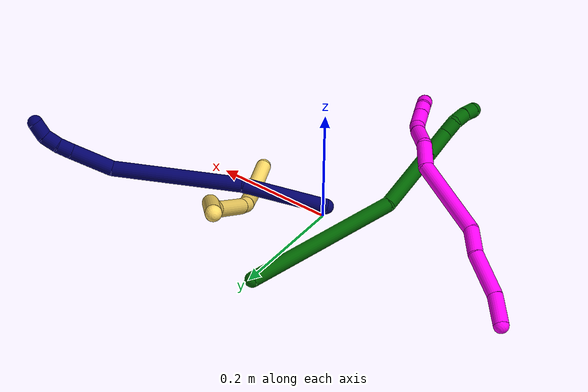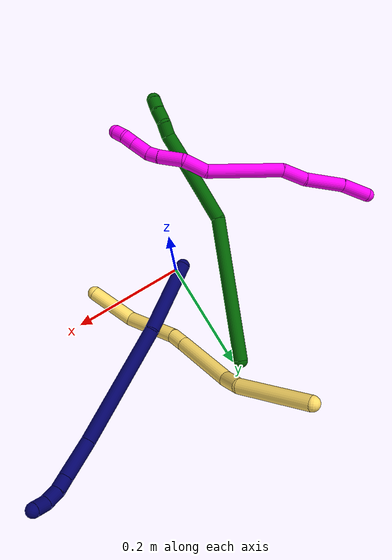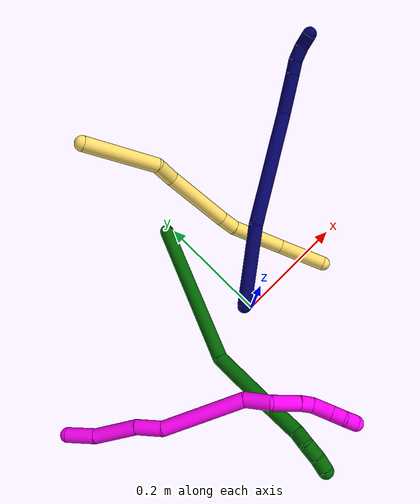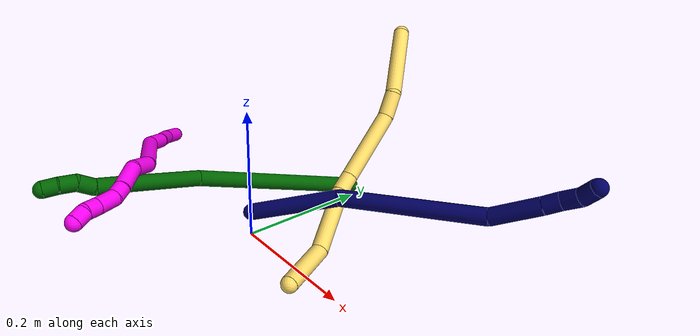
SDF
<sdf version="1.7">
 <world name="default">
  <model name="5">
   <static>0</static>
   <link name="5">
    <collision name="collision-cylinder-e_1_1_4">
     <pose>-0.013481 -0.014291 -0.061001 2.91147 -0.211932 -1.48786</pose>
     <geometry><cylinder><radius>0.0125</radius><length>0.128173</length></cylinder></geometry>
     <surface>
      <friction><ode><mu>1.16</mu><mu2>1.16</mu2><slip1>0</slip1><slip2>0</slip2></ode></friction>
      <contact><ode><kp>1e+06</kp><kd>1</kd><max_vel>0</max_vel><min_depth>0.001</min_depth></ode></contact>
     </surface>
    </collision>
    <visual name="visual-cylinder-e_1_1_4">
     <pose>-0.013481 -0.014291 -0.061001 2.91147 -0.211932 -1.48786</pose>
     <geometry><cylinder><radius>0.0125</radius><length>0.128173</length></cylinder></geometry>
     <material><ambient>1 0.858824 0.4 1</ambient></material>
    </visual>
    <collision name="collision-cylinder-e_2_4_5">
     <pose>-0.03584 -0.039188 -0.136483 2.50943 -0.459359 -1.24132</pose>
     <geometry><cylinder><radius>0.0125</radius><length>0.04005</length></cylinder></geometry>
     <surface>
      <friction><ode><mu>1.16</mu><mu2>1.16</mu2><slip1>0</slip1><slip2>0</slip2></ode></friction>
      <contact><ode><kp>1e+06</kp><kd>1</kd><max_vel>0</max_vel><min_depth>0.001</min_depth></ode></contact>
     </surface>
    </collision>
    <visual name="visual-cylinder-e_2_4_5">
     <pose>-0.03584 -0.039188 -0.136483 2.50943 -0.459359 -1.24132</pose>
     <geometry><cylinder><radius>0.0125</radius><length>0.04005</length></cylinder></geometry>
     <material><ambient>1 0.858824 0.4 1</ambient></material>
    </visual>
    <collision name="collision-cylinder-e_3_5_6">
     <pose>-0.051923 -0.083086 -0.198894 2.53451 -0.12284 -0.387747</pose>
     <geometry><cylinder><radius>0.0125</radius><length>0.117602</length></cylinder></geometry>
     <surface>
      <friction><ode><mu>1.16</mu><mu2>1.16</mu2><slip1>0</slip1><slip2>0</slip2></ode></friction>
      <contact><ode><kp>1e+06</kp><kd>1</kd><max_vel>0</max_vel><min_depth>0.001</min_depth></ode></contact>
     </surface>
    </collision>
    <visual name="visual-cylinder-e_3_5_6">
     <pose>-0.051923 -0.083086 -0.198894 2.53451 -0.12284 -0.387747</pose>
     <geometry><cylinder><radius>0.0125</radius><length>0.117602</length></cylinder></geometry>
     <material><ambient>1 0.858824 0.4 1</ambient></material>
    </visual>
    <collision name="collision-cylinder-e_4_6_7">
     <pose>-0.060173 -0.124267 -0.259145 2.57201 -0.071263 -0.242337</pose>
     <geometry><cylinder><radius>0.0125</radius><length>0.029335</length></cylinder></geometry>
     <surface>
      <friction><ode><mu>1.16</mu><mu2>1.16</mu2><slip1>0</slip1><slip2>0</slip2></ode></friction>
      <contact><ode><kp>1e+06</kp><kd>1</kd><max_vel>0</max_vel><min_depth>0.001</min_depth></ode></contact>
     </surface>
    </collision>
    <visual name="visual-cylinder-e_4_6_7">
     <pose>-0.060173 -0.124267 -0.259145 2.57201 -0.071263 -0.242337</pose>
     <geometry><cylinder><radius>0.0125</radius><length>0.029335</length></cylinder></geometry>
     <material><ambient>1 0.858824 0.4 1</ambient></material>
    </visual>
    <collision name="collision-cylinder-e_5_7_8">
     <pose>-0.067319 -0.149219 -0.318968 2.79676 -0.12032 -0.665984</pose>
     <geometry><cylinder><radius>0.0125</radius><length>0.101681</length></cylinder></geometry>
     <surface>
      <friction><ode><mu>1.16</mu><mu2>1.16</mu2><slip1>0</slip1><slip2>0</slip2></ode></friction>
      <contact><ode><kp>1e+06</kp><kd>1</kd><max_vel>0</max_vel><min_depth>0.001</min_depth></ode></contact>
     </surface>
    </collision>
    <visual name="visual-cylinder-e_5_7_8">
     <pose>-0.067319 -0.149219 -0.318968 2.79676 -0.12032 -0.665984</pose>
     <geometry><cylinder><radius>0.0125</radius><length>0.101681</length></cylinder></geometry>
     <material><ambient>1 0.858824 0.4 1</ambient></material>
    </visual>
    <collision name="collision-cylinder-e_6_8_2">
     <pose>-0.058257 -0.178339 -0.403258 2.82486 0.373342 1.73774</pose>
     <geometry><cylinder><radius>0.0125</radius><length>0.083158</length></cylinder></geometry>
     <surface>
      <friction><ode><mu>1.16</mu><mu2>1.16</mu2><slip1>0</slip1><slip2>0</slip2></ode></friction>
      <contact><ode><kp>1e+06</kp><kd>1</kd><max_vel>0</max_vel><min_depth>0.001</min_depth></ode></contact>
     </surface>
    </collision>
    <visual name="visual-cylinder-e_6_8_2">
     <pose>-0.058257 -0.178339 -0.403258 2.82486 0.373342 1.73774</pose>
     <geometry><cylinder><radius>0.0125</radius><length>0.083158</length></cylinder></geometry>
     <material><ambient>1 0.858824 0.4 1</ambient></material>
    </visual>
    <collision name="collision-sphere-2">
     <pose>-0.043092 -0.190398 -0.440047 0 -0 0</pose>
     <geometry><sphere><radius>0.0125</radius></sphere></geometry>
     <surface>
      <friction><ode><mu>1.16</mu><mu2>1.16</mu2><slip1>0</slip1><slip2>0</slip2></ode></friction>
      <contact><ode><kp>1e+06</kp><kd>1</kd><max_vel>0</max_vel><min_depth>0.001</min_depth></ode></contact>
     </surface>
    </collision>
    <visual name="visual-sphere-2">
     <pose>-0.043092 -0.190398 -0.440047 0 -0 0</pose>
     <geometry><sphere><radius>0.0125</radius></sphere></geometry>
     <material><ambient>1 0.858824 0.4 1</ambient></material>
    </visual>
    <collision name="collision-sphere-4">
     <pose>-0.026961 -0.028582 -0.122002 0 -0 0</pose>
     <geometry><sphere><radius>0.0125</radius></sphere></geometry>
     <surface>
      <friction><ode><mu>1.16</mu><mu2>1.16</mu2><slip1>0</slip1><slip2>0</slip2></ode></friction>
      <contact><ode><kp>1e+06</kp><kd>1</kd><max_vel>0</max_vel><min_depth>0.001</min_depth></ode></contact>
     </surface>
    </collision>
    <visual name="visual-sphere-4">
     <pose>-0.026961 -0.028582 -0.122002 0 -0 0</pose>
     <geometry><sphere><radius>0.0125</radius></sphere></geometry>
     <material><ambient>1 0.858824 0.4 1</ambient></material>
    </visual>
    <collision name="collision-sphere-1">
     <geometry><sphere><radius>0.0125</radius></sphere></geometry>
     <surface>
      <friction><ode><mu>1.16</mu><mu2>1.16</mu2><slip1>0</slip1><slip2>0</slip2></ode></friction>
      <contact><ode><kp>1e+06</kp><kd>1</kd><max_vel>0</max_vel><min_depth>0.001</min_depth></ode></contact>
     </surface>
    </collision>
    <visual name="visual-sphere-1">
     <geometry><sphere><radius>0.0125</radius></sphere></geometry>
     <material><ambient>1 0.858824 0.4 1</ambient></material>
    </visual>
    <collision name="collision-sphere-8">
     <pose>-0.073422 -0.166281 -0.366469 0 -0 0</pose>
     <geometry><sphere><radius>0.0125</radius></sphere></geometry>
     <surface>
      <friction><ode><mu>1.16</mu><mu2>1.16</mu2><slip1>0</slip1><slip2>0</slip2></ode></friction>
      <contact><ode><kp>1e+06</kp><kd>1</kd><max_vel>0</max_vel><min_depth>0.001</min_depth></ode></contact>
     </surface>
    </collision>
    <visual name="visual-sphere-8">
     <pose>-0.073422 -0.166281 -0.366469 0 -0 0</pose>
     <geometry><sphere><radius>0.0125</radius></sphere></geometry>
     <material><ambient>1 0.858824 0.4 1</ambient></material>
    </visual>
    <collision name="collision-sphere-5">
     <pose>-0.044718 -0.049794 -0.150964 0 -0 0</pose>
     <geometry><sphere><radius>0.0125</radius></sphere></geometry>
     <surface>
      <friction><ode><mu>1.16</mu><mu2>1.16</mu2><slip1>0</slip1><slip2>0</slip2></ode></friction>
      <contact><ode><kp>1e+06</kp><kd>1</kd><max_vel>0</max_vel><min_depth>0.001</min_depth></ode></contact>
     </surface>
    </collision>
    <visual name="visual-sphere-5">
     <pose>-0.044718 -0.049794 -0.150964 0 -0 0</pose>
     <geometry><sphere><radius>0.0125</radius></sphere></geometry>
     <material><ambient>1 0.858824 0.4 1</ambient></material>
    </visual>
    <collision name="collision-sphere-6">
     <pose>-0.059128 -0.116377 -0.246825 0 -0 0</pose>
     <geometry><sphere><radius>0.0125</radius></sphere></geometry>
     <surface>
      <friction><ode><mu>1.16</mu><mu2>1.16</mu2><slip1>0</slip1><slip2>0</slip2></ode></friction>
      <contact><ode><kp>1e+06</kp><kd>1</kd><max_vel>0</max_vel><min_depth>0.001</min_depth></ode></contact>
     </surface>
    </collision>
    <visual name="visual-sphere-6">
     <pose>-0.059128 -0.116377 -0.246825 0 -0 0</pose>
     <geometry><sphere><radius>0.0125</radius></sphere></geometry>
     <material><ambient>1 0.858824 0.4 1</ambient></material>
    </visual>
    <collision name="collision-sphere-7">
     <pose>-0.061217 -0.132157 -0.271466 0 -0 0</pose>
     <geometry><sphere><radius>0.0125</radius></sphere></geometry>
     <surface>
      <friction><ode><mu>1.16</mu><mu2>1.16</mu2><slip1>0</slip1><slip2>0</slip2></ode></friction>
      <contact><ode><kp>1e+06</kp><kd>1</kd><max_vel>0</max_vel><min_depth>0.001</min_depth></ode></contact>
     </surface>
    </collision>
    <visual name="visual-sphere-7">
     <pose>-0.061217 -0.132157 -0.271466 0 -0 0</pose>
     <geometry><sphere><radius>0.0125</radius></sphere></geometry>
     <material><ambient>1 0.858824 0.4 1</ambient></material>
    </visual>
    <inertial>
     <pose>-0.045449 -0.093641 -0.220489 0 -0 0</pose>
     <mass>0.5</mass>
     <inertia>
      <ixx>-3.6e-05</ixx>
      <ixy>0</ixy>
      <ixz>0</ixz>
      <iyy>-0.000422</iyy>
      <iyz>0</iyz>
      <izz>0.000187</izz>
     </inertia>
    </inertial>
   </link>
   <pose>-0.043536 0.338267 0.24658 1.01638 -1.04404 -1.80682</pose>
  </model>
  <model name="6">
   <static>0</static>
   <link name="6">
    <collision name="collision-cylinder-e_1_1_4">
     <pose>-0.085877 -0.083961 -0.045426 2.06673 -0.732592 -1.14387</pose>
     <geometry><cylinder><radius>0.0125</radius><length>0.256811</length></cylinder></geometry>
     <surface>
      <friction><ode><mu>1.16</mu><mu2>1.16</mu2><slip1>0</slip1><slip2>0</slip2></ode></friction>
      <contact><ode><kp>1e+06</kp><kd>1</kd><max_vel>0</max_vel><min_depth>0.001</min_depth></ode></contact>
     </surface>
    </collision>
    <visual name="visual-cylinder-e_1_1_4">
     <pose>-0.085877 -0.083961 -0.045426 2.06673 -0.732592 -1.14387</pose>
     <geometry><cylinder><radius>0.0125</radius><length>0.256811</length></cylinder></geometry>
     <material><ambient>0 0.392157 0.003922 1</ambient></material>
    </visual>
    <collision name="collision-cylinder-e_2_4_5">
     <pose>-0.191704 -0.218196 -0.115795 2.03135 -0.341544 -0.542438</pose>
     <geometry><cylinder><radius>0.0125</radius><length>0.119123</length></cylinder></geometry>
     <surface>
      <friction><ode><mu>1.16</mu><mu2>1.16</mu2><slip1>0</slip1><slip2>0</slip2></ode></friction>
      <contact><ode><kp>1e+06</kp><kd>1</kd><max_vel>0</max_vel><min_depth>0.001</min_depth></ode></contact>
     </surface>
    </collision>
    <visual name="visual-cylinder-e_2_4_5">
     <pose>-0.191704 -0.218196 -0.115795 2.03135 -0.341544 -0.542438</pose>
     <geometry><cylinder><radius>0.0125</radius><length>0.119123</length></cylinder></geometry>
     <material><ambient>0 0.392157 0.003922 1</ambient></material>
    </visual>
    <collision name="collision-cylinder-e_3_5_6">
     <pose>-0.219946 -0.29052 -0.151844 2.0374 -0.324018 -0.518707</pose>
     <geometry><cylinder><radius>0.0125</radius><length>0.052089</length></cylinder></geometry>
     <surface>
      <friction><ode><mu>1.16</mu><mu2>1.16</mu2><slip1>0</slip1><slip2>0</slip2></ode></friction>
      <contact><ode><kp>1e+06</kp><kd>1</kd><max_vel>0</max_vel><min_depth>0.001</min_depth></ode></contact>
     </surface>
    </collision>
    <visual name="visual-cylinder-e_3_5_6">
     <pose>-0.219946 -0.29052 -0.151844 2.0374 -0.324018 -0.518707</pose>
     <geometry><cylinder><radius>0.0125</radius><length>0.052089</length></cylinder></geometry>
     <material><ambient>0 0.392157 0.003922 1</ambient></material>
    </visual>
    <collision name="collision-cylinder-e_4_6_7">
     <pose>-0.234163 -0.323843 -0.164572 1.71362 -0.479704 -0.55018</pose>
     <geometry><cylinder><radius>0.0125</radius><length>0.025678</length></cylinder></geometry>
     <surface>
      <friction><ode><mu>1.16</mu><mu2>1.16</mu2><slip1>0</slip1><slip2>0</slip2></ode></friction>
      <contact><ode><kp>1e+06</kp><kd>1</kd><max_vel>0</max_vel><min_depth>0.001</min_depth></ode></contact>
     </surface>
    </collision>
    <visual name="visual-cylinder-e_4_6_7">
     <pose>-0.234163 -0.323843 -0.164572 1.71362 -0.479704 -0.55018</pose>
     <geometry><cylinder><radius>0.0125</radius><length>0.025678</length></cylinder></geometry>
     <material><ambient>0 0.392157 0.003922 1</ambient></material>
    </visual>
    <collision name="collision-cylinder-e_5_7_8">
     <pose>-0.245472 -0.344171 -0.172712 2.19479 -0.449605 -0.839709</pose>
     <geometry><cylinder><radius>0.0125</radius><length>0.024774</length></cylinder></geometry>
     <surface>
      <friction><ode><mu>1.16</mu><mu2>1.16</mu2><slip1>0</slip1><slip2>0</slip2></ode></friction>
      <contact><ode><kp>1e+06</kp><kd>1</kd><max_vel>0</max_vel><min_depth>0.001</min_depth></ode></contact>
     </surface>
    </collision>
    <visual name="visual-cylinder-e_5_7_8">
     <pose>-0.245472 -0.344171 -0.172712 2.19479 -0.449605 -0.839709</pose>
     <geometry><cylinder><radius>0.0125</radius><length>0.024774</length></cylinder></geometry>
     <material><ambient>0 0.392157 0.003922 1</ambient></material>
    </visual>
    <collision name="collision-cylinder-e_6_8_2">
     <pose>-0.256459 -0.359667 -0.185782 2.36468 -0.547554 -1.20281</pose>
     <geometry><cylinder><radius>0.0125</radius><length>0.021525</length></cylinder></geometry>
     <surface>
      <friction><ode><mu>1.16</mu><mu2>1.16</mu2><slip1>0</slip1><slip2>0</slip2></ode></friction>
      <contact><ode><kp>1e+06</kp><kd>1</kd><max_vel>0</max_vel><min_depth>0.001</min_depth></ode></contact>
     </surface>
    </collision>
    <visual name="visual-cylinder-e_6_8_2">
     <pose>-0.256459 -0.359667 -0.185782 2.36468 -0.547554 -1.20281</pose>
     <geometry><cylinder><radius>0.0125</radius><length>0.021525</length></cylinder></geometry>
     <material><ambient>0 0.392157 0.003922 1</ambient></material>
    </visual>
    <collision name="collision-sphere-2">
     <pose>-0.262062 -0.36611 -0.192335 0 -0 0</pose>
     <geometry><sphere><radius>0.0125</radius></sphere></geometry>
     <surface>
      <friction><ode><mu>1.16</mu><mu2>1.16</mu2><slip1>0</slip1><slip2>0</slip2></ode></friction>
      <contact><ode><kp>1e+06</kp><kd>1</kd><max_vel>0</max_vel><min_depth>0.001</min_depth></ode></contact>
     </surface>
    </collision>
    <visual name="visual-sphere-2">
     <pose>-0.262062 -0.36611 -0.192335 0 -0 0</pose>
     <geometry><sphere><radius>0.0125</radius></sphere></geometry>
     <material><ambient>0 0.392157 0.003922 1</ambient></material>
    </visual>
    <collision name="collision-sphere-4">
     <pose>-0.171755 -0.167923 -0.090852 0 -0 0</pose>
     <geometry><sphere><radius>0.0125</radius></sphere></geometry>
     <surface>
      <friction><ode><mu>1.16</mu><mu2>1.16</mu2><slip1>0</slip1><slip2>0</slip2></ode></friction>
      <contact><ode><kp>1e+06</kp><kd>1</kd><max_vel>0</max_vel><min_depth>0.001</min_depth></ode></contact>
     </surface>
    </collision>
    <visual name="visual-sphere-4">
     <pose>-0.171755 -0.167923 -0.090852 0 -0 0</pose>
     <geometry><sphere><radius>0.0125</radius></sphere></geometry>
     <material><ambient>0 0.392157 0.003922 1</ambient></material>
    </visual>
    <collision name="collision-sphere-1">
     <geometry><sphere><radius>0.0125</radius></sphere></geometry>
     <surface>
      <friction><ode><mu>1.16</mu><mu2>1.16</mu2><slip1>0</slip1><slip2>0</slip2></ode></friction>
      <contact><ode><kp>1e+06</kp><kd>1</kd><max_vel>0</max_vel><min_depth>0.001</min_depth></ode></contact>
     </surface>
    </collision>
    <visual name="visual-sphere-1">
     <geometry><sphere><radius>0.0125</radius></sphere></geometry>
     <material><ambient>0 0.392157 0.003922 1</ambient></material>
    </visual>
    <collision name="collision-sphere-8">
     <pose>-0.250856 -0.353225 -0.17923 0 -0 0</pose>
     <geometry><sphere><radius>0.0125</radius></sphere></geometry>
     <surface>
      <friction><ode><mu>1.16</mu><mu2>1.16</mu2><slip1>0</slip1><slip2>0</slip2></ode></friction>
      <contact><ode><kp>1e+06</kp><kd>1</kd><max_vel>0</max_vel><min_depth>0.001</min_depth></ode></contact>
     </surface>
    </collision>
    <visual name="visual-sphere-8">
     <pose>-0.250856 -0.353225 -0.17923 0 -0 0</pose>
     <geometry><sphere><radius>0.0125</radius></sphere></geometry>
     <material><ambient>0 0.392157 0.003922 1</ambient></material>
    </visual>
    <collision name="collision-sphere-5">
     <pose>-0.211654 -0.26847 -0.140738 0 -0 0</pose>
     <geometry><sphere><radius>0.0125</radius></sphere></geometry>
     <surface>
      <friction><ode><mu>1.16</mu><mu2>1.16</mu2><slip1>0</slip1><slip2>0</slip2></ode></friction>
      <contact><ode><kp>1e+06</kp><kd>1</kd><max_vel>0</max_vel><min_depth>0.001</min_depth></ode></contact>
     </surface>
    </collision>
    <visual name="visual-sphere-5">
     <pose>-0.211654 -0.26847 -0.140738 0 -0 0</pose>
     <geometry><sphere><radius>0.0125</radius></sphere></geometry>
     <material><ambient>0 0.392157 0.003922 1</ambient></material>
    </visual>
    <collision name="collision-sphere-6">
     <pose>-0.228238 -0.31257 -0.162951 0 -0 0</pose>
     <geometry><sphere><radius>0.0125</radius></sphere></geometry>
     <surface>
      <friction><ode><mu>1.16</mu><mu2>1.16</mu2><slip1>0</slip1><slip2>0</slip2></ode></friction>
      <contact><ode><kp>1e+06</kp><kd>1</kd><max_vel>0</max_vel><min_depth>0.001</min_depth></ode></contact>
     </surface>
    </collision>
    <visual name="visual-sphere-6">
     <pose>-0.228238 -0.31257 -0.162951 0 -0 0</pose>
     <geometry><sphere><radius>0.0125</radius></sphere></geometry>
     <material><ambient>0 0.392157 0.003922 1</ambient></material>
    </visual>
    <collision name="collision-sphere-7">
     <pose>-0.240089 -0.335117 -0.166193 0 -0 0</pose>
     <geometry><sphere><radius>0.0125</radius></sphere></geometry>
     <surface>
      <friction><ode><mu>1.16</mu><mu2>1.16</mu2><slip1>0</slip1><slip2>0</slip2></ode></friction>
      <contact><ode><kp>1e+06</kp><kd>1</kd><max_vel>0</max_vel><min_depth>0.001</min_depth></ode></contact>
     </surface>
    </collision>
    <visual name="visual-sphere-7">
     <pose>-0.240089 -0.335117 -0.166193 0 -0 0</pose>
     <geometry><sphere><radius>0.0125</radius></sphere></geometry>
     <material><ambient>0 0.392157 0.003922 1</ambient></material>
    </visual>
    <inertial>
     <pose>-0.147924 -0.174543 -0.091746 0 -0 0</pose>
     <mass>0.5</mass>
     <inertia>
      <ixx>-0.000494</ixx>
      <ixy>0</ixy>
      <ixz>0</ixz>
      <iyy>-0.000627</iyy>
      <iyz>0</iyz>
      <izz>0.00206</izz>
     </inertia>
    </inertial>
   </link>
   <pose>-0.011894 0.206578 0.012174 -0.690312 0.05783 0.345328</pose>
  </model>
  <model name="7">
   <static>0</static>
   <link name="7">
    <collision name="collision-cylinder-e_1_1_4">
     <pose>0.018654 0.013411 0.067736 -0.195466 0.26385 -0.026019</pose>
     <geometry><cylinder><radius>0.0125</radius><length>0.143052</length></cylinder></geometry>
     <surface>
      <friction><ode><mu>1.16</mu><mu2>1.16</mu2><slip1>0</slip1><slip2>0</slip2></ode></friction>
      <contact><ode><kp>1e+06</kp><kd>1</kd><max_vel>0</max_vel><min_depth>0.001</min_depth></ode></contact>
     </surface>
    </collision>
    <visual name="visual-cylinder-e_1_1_4">
     <pose>0.018654 0.013411 0.067736 -0.195466 0.26385 -0.026019</pose>
     <geometry><cylinder><radius>0.0125</radius><length>0.143052</length></cylinder></geometry>
     <material><ambient>0.003922 0 0.403922 1</ambient></material>
    </visual>
    <collision name="collision-cylinder-e_2_4_5">
     <pose>0.080957 0.066114 0.222824 -0.42269 0.427596 -0.093097</pose>
     <geometry><cylinder><radius>0.0125</radius><length>0.210519</length></cylinder></geometry>
     <surface>
      <friction><ode><mu>1.16</mu><mu2>1.16</mu2><slip1>0</slip1><slip2>0</slip2></ode></friction>
      <contact><ode><kp>1e+06</kp><kd>1</kd><max_vel>0</max_vel><min_depth>0.001</min_depth></ode></contact>
     </surface>
    </collision>
    <visual name="visual-cylinder-e_2_4_5">
     <pose>0.080957 0.066114 0.222824 -0.42269 0.427596 -0.093097</pose>
     <geometry><cylinder><radius>0.0125</radius><length>0.210519</length></cylinder></geometry>
     <material><ambient>0.003922 0 0.403922 1</ambient></material>
    </visual>
    <collision name="collision-cylinder-e_3_5_6">
     <pose>0.135388 0.10716 0.344077 -0.05171 0.307528 -0.008016</pose>
     <geometry><cylinder><radius>0.0125</radius><length>0.071234</length></cylinder></geometry>
     <surface>
      <friction><ode><mu>1.16</mu><mu2>1.16</mu2><slip1>0</slip1><slip2>0</slip2></ode></friction>
      <contact><ode><kp>1e+06</kp><kd>1</kd><max_vel>0</max_vel><min_depth>0.001</min_depth></ode></contact>
     </surface>
    </collision>
    <visual name="visual-cylinder-e_3_5_6">
     <pose>0.135388 0.10716 0.344077 -0.05171 0.307528 -0.008016</pose>
     <geometry><cylinder><radius>0.0125</radius><length>0.071234</length></cylinder></geometry>
     <material><ambient>0.003922 0 0.403922 1</ambient></material>
    </visual>
    <collision name="collision-cylinder-e_4_6_7">
     <pose>0.14939 0.109039 0.389413 -0.010855 0.274528 -0.001499</pose>
     <geometry><cylinder><radius>0.0125</radius><length>0.02376</length></cylinder></geometry>
     <surface>
      <friction><ode><mu>1.16</mu><mu2>1.16</mu2><slip1>0</slip1><slip2>0</slip2></ode></friction>
      <contact><ode><kp>1e+06</kp><kd>1</kd><max_vel>0</max_vel><min_depth>0.001</min_depth></ode></contact>
     </surface>
    </collision>
    <visual name="visual-cylinder-e_4_6_7">
     <pose>0.14939 0.109039 0.389413 -0.010855 0.274528 -0.001499</pose>
     <geometry><cylinder><radius>0.0125</radius><length>0.02376</length></cylinder></geometry>
     <material><ambient>0.003922 0 0.403922 1</ambient></material>
    </visual>
    <collision name="collision-cylinder-e_5_7_8">
     <pose>0.158319 0.107915 0.412171 0.109702 0.464484 0.02597</pose>
     <geometry><cylinder><radius>0.0125</radius><length>0.025484</length></cylinder></geometry>
     <surface>
      <friction><ode><mu>1.16</mu><mu2>1.16</mu2><slip1>0</slip1><slip2>0</slip2></ode></friction>
      <contact><ode><kp>1e+06</kp><kd>1</kd><max_vel>0</max_vel><min_depth>0.001</min_depth></ode></contact>
     </surface>
    </collision>
    <visual name="visual-cylinder-e_5_7_8">
     <pose>0.158319 0.107915 0.412171 0.109702 0.464484 0.02597</pose>
     <geometry><cylinder><radius>0.0125</radius><length>0.025484</length></cylinder></geometry>
     <material><ambient>0.003922 0 0.403922 1</ambient></material>
    </visual>
    <collision name="collision-cylinder-e_6_8_2">
     <pose>0.169253 0.100428 0.4336 0.553191 0.414546 0.119251</pose>
     <geometry><cylinder><radius>0.0125</radius><length>0.02595</length></cylinder></geometry>
     <surface>
      <friction><ode><mu>1.16</mu><mu2>1.16</mu2><slip1>0</slip1><slip2>0</slip2></ode></friction>
      <contact><ode><kp>1e+06</kp><kd>1</kd><max_vel>0</max_vel><min_depth>0.001</min_depth></ode></contact>
     </surface>
    </collision>
    <visual name="visual-cylinder-e_6_8_2">
     <pose>0.169253 0.100428 0.4336 0.553191 0.414546 0.119251</pose>
     <geometry><cylinder><radius>0.0125</radius><length>0.02595</length></cylinder></geometry>
     <material><ambient>0.003922 0 0.403922 1</ambient></material>
    </visual>
    <collision name="collision-sphere-2">
     <pose>0.174479 0.094189 0.443704 0 -0 0</pose>
     <geometry><sphere><radius>0.0125</radius></sphere></geometry>
     <surface>
      <friction><ode><mu>1.16</mu><mu2>1.16</mu2><slip1>0</slip1><slip2>0</slip2></ode></friction>
      <contact><ode><kp>1e+06</kp><kd>1</kd><max_vel>0</max_vel><min_depth>0.001</min_depth></ode></contact>
     </surface>
    </collision>
    <visual name="visual-sphere-2">
     <pose>0.174479 0.094189 0.443704 0 -0 0</pose>
     <geometry><sphere><radius>0.0125</radius></sphere></geometry>
     <material><ambient>0.003922 0 0.403922 1</ambient></material>
    </visual>
    <collision name="collision-sphere-4">
     <pose>0.037308 0.026823 0.135472 0 -0 0</pose>
     <geometry><sphere><radius>0.0125</radius></sphere></geometry>
     <surface>
      <friction><ode><mu>1.16</mu><mu2>1.16</mu2><slip1>0</slip1><slip2>0</slip2></ode></friction>
      <contact><ode><kp>1e+06</kp><kd>1</kd><max_vel>0</max_vel><min_depth>0.001</min_depth></ode></contact>
     </surface>
    </collision>
    <visual name="visual-sphere-4">
     <pose>0.037308 0.026823 0.135472 0 -0 0</pose>
     <geometry><sphere><radius>0.0125</radius></sphere></geometry>
     <material><ambient>0.003922 0 0.403922 1</ambient></material>
    </visual>
    <collision name="collision-sphere-1">
     <geometry><sphere><radius>0.0125</radius></sphere></geometry>
     <surface>
      <friction><ode><mu>1.16</mu><mu2>1.16</mu2><slip1>0</slip1><slip2>0</slip2></ode></friction>
      <contact><ode><kp>1e+06</kp><kd>1</kd><max_vel>0</max_vel><min_depth>0.001</min_depth></ode></contact>
     </surface>
    </collision>
    <visual name="visual-sphere-1">
     <geometry><sphere><radius>0.0125</radius></sphere></geometry>
     <material><ambient>0.003922 0 0.403922 1</ambient></material>
    </visual>
    <collision name="collision-sphere-8">
     <pose>0.164027 0.106668 0.423495 0 -0 0</pose>
     <geometry><sphere><radius>0.0125</radius></sphere></geometry>
     <surface>
      <friction><ode><mu>1.16</mu><mu2>1.16</mu2><slip1>0</slip1><slip2>0</slip2></ode></friction>
      <contact><ode><kp>1e+06</kp><kd>1</kd><max_vel>0</max_vel><min_depth>0.001</min_depth></ode></contact>
     </surface>
    </collision>
    <visual name="visual-sphere-8">
     <pose>0.164027 0.106668 0.423495 0 -0 0</pose>
     <geometry><sphere><radius>0.0125</radius></sphere></geometry>
     <material><ambient>0.003922 0 0.403922 1</ambient></material>
    </visual>
    <collision name="collision-sphere-5">
     <pose>0.124607 0.105405 0.310177 0 -0 0</pose>
     <geometry><sphere><radius>0.0125</radius></sphere></geometry>
     <surface>
      <friction><ode><mu>1.16</mu><mu2>1.16</mu2><slip1>0</slip1><slip2>0</slip2></ode></friction>
      <contact><ode><kp>1e+06</kp><kd>1</kd><max_vel>0</max_vel><min_depth>0.001</min_depth></ode></contact>
     </surface>
    </collision>
    <visual name="visual-sphere-5">
     <pose>0.124607 0.105405 0.310177 0 -0 0</pose>
     <geometry><sphere><radius>0.0125</radius></sphere></geometry>
     <material><ambient>0.003922 0 0.403922 1</ambient></material>
    </visual>
    <collision name="collision-sphere-6">
     <pose>0.14617 0.108914 0.377978 0 -0 0</pose>
     <geometry><sphere><radius>0.0125</radius></sphere></geometry>
     <surface>
      <friction><ode><mu>1.16</mu><mu2>1.16</mu2><slip1>0</slip1><slip2>0</slip2></ode></friction>
      <contact><ode><kp>1e+06</kp><kd>1</kd><max_vel>0</max_vel><min_depth>0.001</min_depth></ode></contact>
     </surface>
    </collision>
    <visual name="visual-sphere-6">
     <pose>0.14617 0.108914 0.377978 0 -0 0</pose>
     <geometry><sphere><radius>0.0125</radius></sphere></geometry>
     <material><ambient>0.003922 0 0.403922 1</ambient></material>
    </visual>
    <collision name="collision-sphere-7">
     <pose>0.152611 0.109163 0.400847 0 -0 0</pose>
     <geometry><sphere><radius>0.0125</radius></sphere></geometry>
     <surface>
      <friction><ode><mu>1.16</mu><mu2>1.16</mu2><slip1>0</slip1><slip2>0</slip2></ode></friction>
      <contact><ode><kp>1e+06</kp><kd>1</kd><max_vel>0</max_vel><min_depth>0.001</min_depth></ode></contact>
     </surface>
    </collision>
    <visual name="visual-sphere-7">
     <pose>0.152611 0.109163 0.400847 0 -0 0</pose>
     <geometry><sphere><radius>0.0125</radius></sphere></geometry>
     <material><ambient>0.003922 0 0.403922 1</ambient></material>
    </visual>
    <inertial>
     <pose>0.082664 0.062835 0.224234 0 -0 0</pose>
     <mass>0.5</mass>
     <inertia>
      <ixx>0.000931</ixx>
      <ixy>0</ixy>
      <ixz>0</ixz>
      <iyy>0.000945</iyy>
      <iyz>0</iyz>
      <izz>-0.000709</izz>
     </inertia>
    </inertial>
   </link>
   <pose>-0.011504 0.008297 0.030455 -0.992441 0.147798 -0.585532</pose>
  </model>
  <model name="10">
   <static>0</static>
   <link name="10">
    <collision name="collision-cylinder-e_1_1_4">
     <pose>0.011325 -0.012874 0.020068 0.570383 0.443428 0.131987</pose>
     <geometry><cylinder><radius>0.0125</radius><length>0.05279</length></cylinder></geometry>
     <surface>
      <friction><ode><mu>1.16</mu><mu2>1.16</mu2><slip1>0</slip1><slip2>0</slip2></ode></friction>
      <contact><ode><kp>1e+06</kp><kd>1</kd><max_vel>0</max_vel><min_depth>0.001</min_depth></ode></contact>
     </surface>
    </collision>
    <visual name="visual-cylinder-e_1_1_4">
     <pose>0.011325 -0.012874 0.020068 0.570383 0.443428 0.131987</pose>
     <geometry><cylinder><radius>0.0125</radius><length>0.05279</length></cylinder></geometry>
     <material><ambient>1 0 0.964706 1</ambient></material>
    </visual>
    <collision name="collision-cylinder-e_2_4_5">
     <pose>0.043642 -0.048291 0.062684 0.785295 0.582264 0.246936</pose>
     <geometry><cylinder><radius>0.0125</radius><length>0.076351</length></cylinder></geometry>
     <surface>
      <friction><ode><mu>1.16</mu><mu2>1.16</mu2><slip1>0</slip1><slip2>0</slip2></ode></friction>
      <contact><ode><kp>1e+06</kp><kd>1</kd><max_vel>0</max_vel><min_depth>0.001</min_depth></ode></contact>
     </surface>
    </collision>
    <visual name="visual-cylinder-e_2_4_5">
     <pose>0.043642 -0.048291 0.062684 0.785295 0.582264 0.246936</pose>
     <geometry><cylinder><radius>0.0125</radius><length>0.076351</length></cylinder></geometry>
     <material><ambient>1 0 0.964706 1</ambient></material>
    </visual>
    <collision name="collision-cylinder-e_3_5_6">
     <pose>0.073755 -0.082035 0.102993 0.562644 0.409744 0.119951</pose>
     <geometry><cylinder><radius>0.0125</radius><length>0.045783</length></cylinder></geometry>
     <surface>
      <friction><ode><mu>1.16</mu><mu2>1.16</mu2><slip1>0</slip1><slip2>0</slip2></ode></friction>
      <contact><ode><kp>1e+06</kp><kd>1</kd><max_vel>0</max_vel><min_depth>0.001</min_depth></ode></contact>
     </surface>
    </collision>
    <visual name="visual-cylinder-e_3_5_6">
     <pose>0.073755 -0.082035 0.102993 0.562644 0.409744 0.119951</pose>
     <geometry><cylinder><radius>0.0125</radius><length>0.045783</length></cylinder></geometry>
     <material><ambient>1 0 0.964706 1</ambient></material>
    </visual>
    <collision name="collision-cylinder-e_4_6_7">
     <pose>0.11735 -0.144263 0.154852 0.9817 0.511818 0.277887</pose>
     <geometry><cylinder><radius>0.0125</radius><length>0.140785</length></cylinder></geometry>
     <surface>
      <friction><ode><mu>1.16</mu><mu2>1.16</mu2><slip1>0</slip1><slip2>0</slip2></ode></friction>
      <contact><ode><kp>1e+06</kp><kd>1</kd><max_vel>0</max_vel><min_depth>0.001</min_depth></ode></contact>
     </surface>
    </collision>
    <visual name="visual-cylinder-e_4_6_7">
     <pose>0.11735 -0.144263 0.154852 0.9817 0.511818 0.277887</pose>
     <geometry><cylinder><radius>0.0125</radius><length>0.140785</length></cylinder></geometry>
     <material><ambient>1 0 0.964706 1</ambient></material>
    </visual>
    <collision name="collision-cylinder-e_5_7_8">
     <pose>0.160343 -0.204793 0.207036 0.483788 0.394997 0.098663</pose>
     <geometry><cylinder><radius>0.0125</radius><length>0.044268</length></cylinder></geometry>
     <surface>
      <friction><ode><mu>1.16</mu><mu2>1.16</mu2><slip1>0</slip1><slip2>0</slip2></ode></friction>
      <contact><ode><kp>1e+06</kp><kd>1</kd><max_vel>0</max_vel><min_depth>0.001</min_depth></ode></contact>
     </surface>
    </collision>
    <visual name="visual-cylinder-e_5_7_8">
     <pose>0.160343 -0.204793 0.207036 0.483788 0.394997 0.098663</pose>
     <geometry><cylinder><radius>0.0125</radius><length>0.044268</length></cylinder></geometry>
     <material><ambient>1 0 0.964706 1</ambient></material>
    </visual>
    <collision name="collision-cylinder-e_6_8_9">
     <pose>0.169542 -0.231412 0.240285 0.845799 0.029802 0.013413</pose>
     <geometry><cylinder><radius>0.0125</radius><length>0.045755</length></cylinder></geometry>
     <surface>
      <friction><ode><mu>1.16</mu><mu2>1.16</mu2><slip1>0</slip1><slip2>0</slip2></ode></friction>
      <contact><ode><kp>1e+06</kp><kd>1</kd><max_vel>0</max_vel><min_depth>0.001</min_depth></ode></contact>
     </surface>
    </collision>
    <visual name="visual-cylinder-e_6_8_9">
     <pose>0.169542 -0.231412 0.240285 0.845799 0.029802 0.013413</pose>
     <geometry><cylinder><radius>0.0125</radius><length>0.045755</length></cylinder></geometry>
     <material><ambient>1 0 0.964706 1</ambient></material>
    </visual>
    <collision name="collision-cylinder-e_7_9_10">
     <pose>0.169601 -0.255572 0.263286 0.732194 -0.05906 -0.022648</pose>
     <geometry><cylinder><radius>0.0125</radius><length>0.02111</length></cylinder></geometry>
     <surface>
      <friction><ode><mu>1.16</mu><mu2>1.16</mu2><slip1>0</slip1><slip2>0</slip2></ode></friction>
      <contact><ode><kp>1e+06</kp><kd>1</kd><max_vel>0</max_vel><min_depth>0.001</min_depth></ode></contact>
     </surface>
    </collision>
    <visual name="visual-cylinder-e_7_9_10">
     <pose>0.169601 -0.255572 0.263286 0.732194 -0.05906 -0.022648</pose>
     <geometry><cylinder><radius>0.0125</radius><length>0.02111</length></cylinder></geometry>
     <material><ambient>1 0 0.964706 1</ambient></material>
    </visual>
    <collision name="collision-cylinder-e_8_10_11">
     <pose>0.169516 -0.268824 0.286176 0.391164 0.033046 0.006547</pose>
     <geometry><cylinder><radius>0.0125</radius><length>0.032586</length></cylinder></geometry>
     <surface>
      <friction><ode><mu>1.16</mu><mu2>1.16</mu2><slip1>0</slip1><slip2>0</slip2></ode></friction>
      <contact><ode><kp>1e+06</kp><kd>1</kd><max_vel>0</max_vel><min_depth>0.001</min_depth></ode></contact>
     </surface>
    </collision>
    <visual name="visual-cylinder-e_8_10_11">
     <pose>0.169516 -0.268824 0.286176 0.391164 0.033046 0.006547</pose>
     <geometry><cylinder><radius>0.0125</radius><length>0.032586</length></cylinder></geometry>
     <material><ambient>1 0 0.964706 1</ambient></material>
    </visual>
    <collision name="collision-cylinder-e_9_11_12">
     <pose>0.170719 -0.278636 0.310714 0.363058 0.065385 0.012006</pose>
     <geometry><cylinder><radius>0.0125</radius><length>0.020335</length></cylinder></geometry>
     <surface>
      <friction><ode><mu>1.16</mu><mu2>1.16</mu2><slip1>0</slip1><slip2>0</slip2></ode></friction>
      <contact><ode><kp>1e+06</kp><kd>1</kd><max_vel>0</max_vel><min_depth>0.001</min_depth></ode></contact>
     </surface>
    </collision>
    <visual name="visual-cylinder-e_9_11_12">
     <pose>0.170719 -0.278636 0.310714 0.363058 0.065385 0.012006</pose>
     <geometry><cylinder><radius>0.0125</radius><length>0.020335</length></cylinder></geometry>
     <material><ambient>1 0 0.964706 1</ambient></material>
    </visual>
    <collision name="collision-cylinder-e_10_12_2">
     <pose>0.169115 -0.287699 0.32841 0.586823 -0.22608 -0.068571</pose>
     <geometry><cylinder><radius>0.0125</radius><length>0.020236</length></cylinder></geometry>
     <surface>
      <friction><ode><mu>1.16</mu><mu2>1.16</mu2><slip1>0</slip1><slip2>0</slip2></ode></friction>
      <contact><ode><kp>1e+06</kp><kd>1</kd><max_vel>0</max_vel><min_depth>0.001</min_depth></ode></contact>
     </surface>
    </collision>
    <visual name="visual-cylinder-e_10_12_2">
     <pose>0.169115 -0.287699 0.32841 0.586823 -0.22608 -0.068571</pose>
     <geometry><cylinder><radius>0.0125</radius><length>0.020236</length></cylinder></geometry>
     <material><ambient>1 0 0.964706 1</ambient></material>
    </visual>
    <collision name="collision-sphere-2">
     <pose>0.166847 -0.293159 0.33662 0 -0 0</pose>
     <geometry><sphere><radius>0.0125</radius></sphere></geometry>
     <surface>
      <friction><ode><mu>1.16</mu><mu2>1.16</mu2><slip1>0</slip1><slip2>0</slip2></ode></friction>
      <contact><ode><kp>1e+06</kp><kd>1</kd><max_vel>0</max_vel><min_depth>0.001</min_depth></ode></contact>
     </surface>
    </collision>
    <visual name="visual-sphere-2">
     <pose>0.166847 -0.293159 0.33662 0 -0 0</pose>
     <geometry><sphere><radius>0.0125</radius></sphere></geometry>
     <material><ambient>1 0 0.964706 1</ambient></material>
    </visual>
    <collision name="collision-sphere-12">
     <pose>0.171383 -0.282239 0.320199 0 -0 0</pose>
     <geometry><sphere><radius>0.0125</radius></sphere></geometry>
     <surface>
      <friction><ode><mu>1.16</mu><mu2>1.16</mu2><slip1>0</slip1><slip2>0</slip2></ode></friction>
      <contact><ode><kp>1e+06</kp><kd>1</kd><max_vel>0</max_vel><min_depth>0.001</min_depth></ode></contact>
     </surface>
    </collision>
    <visual name="visual-sphere-12">
     <pose>0.171383 -0.282239 0.320199 0 -0 0</pose>
     <geometry><sphere><radius>0.0125</radius></sphere></geometry>
     <material><ambient>1 0 0.964706 1</ambient></material>
    </visual>
    <collision name="collision-sphere-11">
     <pose>0.170055 -0.275033 0.30123 0 -0 0</pose>
     <geometry><sphere><radius>0.0125</radius></sphere></geometry>
     <surface>
      <friction><ode><mu>1.16</mu><mu2>1.16</mu2><slip1>0</slip1><slip2>0</slip2></ode></friction>
      <contact><ode><kp>1e+06</kp><kd>1</kd><max_vel>0</max_vel><min_depth>0.001</min_depth></ode></contact>
     </surface>
    </collision>
    <visual name="visual-sphere-11">
     <pose>0.170055 -0.275033 0.30123 0 -0 0</pose>
     <geometry><sphere><radius>0.0125</radius></sphere></geometry>
     <material><ambient>1 0 0.964706 1</ambient></material>
    </visual>
    <collision name="collision-sphere-10">
     <pose>0.168978 -0.262616 0.271122 0 -0 0</pose>
     <geometry><sphere><radius>0.0125</radius></sphere></geometry>
     <surface>
      <friction><ode><mu>1.16</mu><mu2>1.16</mu2><slip1>0</slip1><slip2>0</slip2></ode></friction>
      <contact><ode><kp>1e+06</kp><kd>1</kd><max_vel>0</max_vel><min_depth>0.001</min_depth></ode></contact>
     </surface>
    </collision>
    <visual name="visual-sphere-10">
     <pose>0.168978 -0.262616 0.271122 0 -0 0</pose>
     <geometry><sphere><radius>0.0125</radius></sphere></geometry>
     <material><ambient>1 0 0.964706 1</ambient></material>
    </visual>
    <collision name="collision-sphere-9">
     <pose>0.170224 -0.248528 0.255449 0 -0 0</pose>
     <geometry><sphere><radius>0.0125</radius></sphere></geometry>
     <surface>
      <friction><ode><mu>1.16</mu><mu2>1.16</mu2><slip1>0</slip1><slip2>0</slip2></ode></friction>
      <contact><ode><kp>1e+06</kp><kd>1</kd><max_vel>0</max_vel><min_depth>0.001</min_depth></ode></contact>
     </surface>
    </collision>
    <visual name="visual-sphere-9">
     <pose>0.170224 -0.248528 0.255449 0 -0 0</pose>
     <geometry><sphere><radius>0.0125</radius></sphere></geometry>
     <material><ambient>1 0 0.964706 1</ambient></material>
    </visual>
    <collision name="collision-sphere-4">
     <pose>0.022649 -0.025748 0.040136 0 -0 0</pose>
     <geometry><sphere><radius>0.0125</radius></sphere></geometry>
     <surface>
      <friction><ode><mu>1.16</mu><mu2>1.16</mu2><slip1>0</slip1><slip2>0</slip2></ode></friction>
      <contact><ode><kp>1e+06</kp><kd>1</kd><max_vel>0</max_vel><min_depth>0.001</min_depth></ode></contact>
     </surface>
    </collision>
    <visual name="visual-sphere-4">
     <pose>0.022649 -0.025748 0.040136 0 -0 0</pose>
     <geometry><sphere><radius>0.0125</radius></sphere></geometry>
     <material><ambient>1 0 0.964706 1</ambient></material>
    </visual>
    <collision name="collision-sphere-1">
     <geometry><sphere><radius>0.0125</radius></sphere></geometry>
     <surface>
      <friction><ode><mu>1.16</mu><mu2>1.16</mu2><slip1>0</slip1><slip2>0</slip2></ode></friction>
      <contact><ode><kp>1e+06</kp><kd>1</kd><max_vel>0</max_vel><min_depth>0.001</min_depth></ode></contact>
     </surface>
    </collision>
    <visual name="visual-sphere-1">
     <geometry><sphere><radius>0.0125</radius></sphere></geometry>
     <material><ambient>1 0 0.964706 1</ambient></material>
    </visual>
    <collision name="collision-sphere-8">
     <pose>0.168861 -0.214296 0.225121 0 -0 0</pose>
     <geometry><sphere><radius>0.0125</radius></sphere></geometry>
     <surface>
      <friction><ode><mu>1.16</mu><mu2>1.16</mu2><slip1>0</slip1><slip2>0</slip2></ode></friction>
      <contact><ode><kp>1e+06</kp><kd>1</kd><max_vel>0</max_vel><min_depth>0.001</min_depth></ode></contact>
     </surface>
    </collision>
    <visual name="visual-sphere-8">
     <pose>0.168861 -0.214296 0.225121 0 -0 0</pose>
     <geometry><sphere><radius>0.0125</radius></sphere></geometry>
     <material><ambient>1 0 0.964706 1</ambient></material>
    </visual>
    <collision name="collision-sphere-5">
     <pose>0.064636 -0.070835 0.085233 0 -0 0</pose>
     <geometry><sphere><radius>0.0125</radius></sphere></geometry>
     <surface>
      <friction><ode><mu>1.16</mu><mu2>1.16</mu2><slip1>0</slip1><slip2>0</slip2></ode></friction>
      <contact><ode><kp>1e+06</kp><kd>1</kd><max_vel>0</max_vel><min_depth>0.001</min_depth></ode></contact>
     </surface>
    </collision>
    <visual name="visual-sphere-5">
     <pose>0.064636 -0.070835 0.085233 0 -0 0</pose>
     <geometry><sphere><radius>0.0125</radius></sphere></geometry>
     <material><ambient>1 0 0.964706 1</ambient></material>
    </visual>
    <collision name="collision-sphere-6">
     <pose>0.082875 -0.093235 0.120753 0 -0 0</pose>
     <geometry><sphere><radius>0.0125</radius></sphere></geometry>
     <surface>
      <friction><ode><mu>1.16</mu><mu2>1.16</mu2><slip1>0</slip1><slip2>0</slip2></ode></friction>
      <contact><ode><kp>1e+06</kp><kd>1</kd><max_vel>0</max_vel><min_depth>0.001</min_depth></ode></contact>
     </surface>
    </collision>
    <visual name="visual-sphere-6">
     <pose>0.082875 -0.093235 0.120753 0 -0 0</pose>
     <geometry><sphere><radius>0.0125</radius></sphere></geometry>
     <material><ambient>1 0 0.964706 1</ambient></material>
    </visual>
    <collision name="collision-sphere-7">
     <pose>0.151826 -0.195291 0.188951 0 -0 0</pose>
     <geometry><sphere><radius>0.0125</radius></sphere></geometry>
     <surface>
      <friction><ode><mu>1.16</mu><mu2>1.16</mu2><slip1>0</slip1><slip2>0</slip2></ode></friction>
      <contact><ode><kp>1e+06</kp><kd>1</kd><max_vel>0</max_vel><min_depth>0.001</min_depth></ode></contact>
     </surface>
    </collision>
    <visual name="visual-sphere-7">
     <pose>0.151826 -0.195291 0.188951 0 -0 0</pose>
     <geometry><sphere><radius>0.0125</radius></sphere></geometry>
     <material><ambient>1 0 0.964706 1</ambient></material>
    </visual>
    <inertial>
     <pose>0.109363 -0.147459 0.160737 0 -0 0</pose>
     <mass>0.5</mass>
     <inertia>
      <ixx>0.000362</ixx>
      <ixy>0</ixy>
      <ixz>0</ixz>
      <iyy>0.000274</iyy>
      <iyz>0</iyz>
      <izz>9.7e-05</izz>
     </inertia>
    </inertial>
   </link>
   <pose>-0.377873 0.065366 0.012478 1.12222 -1.04731 0.428439</pose>
  </model>
 </world>
</sdf>
